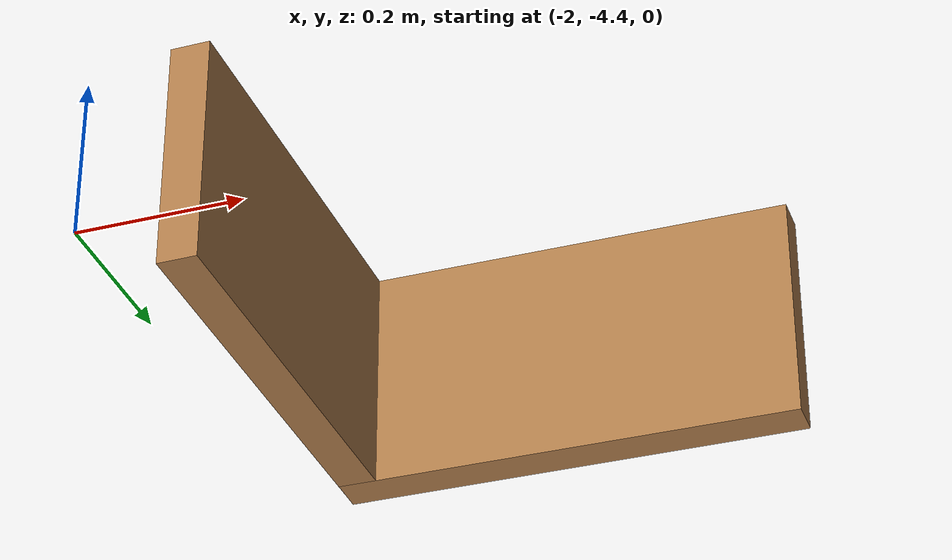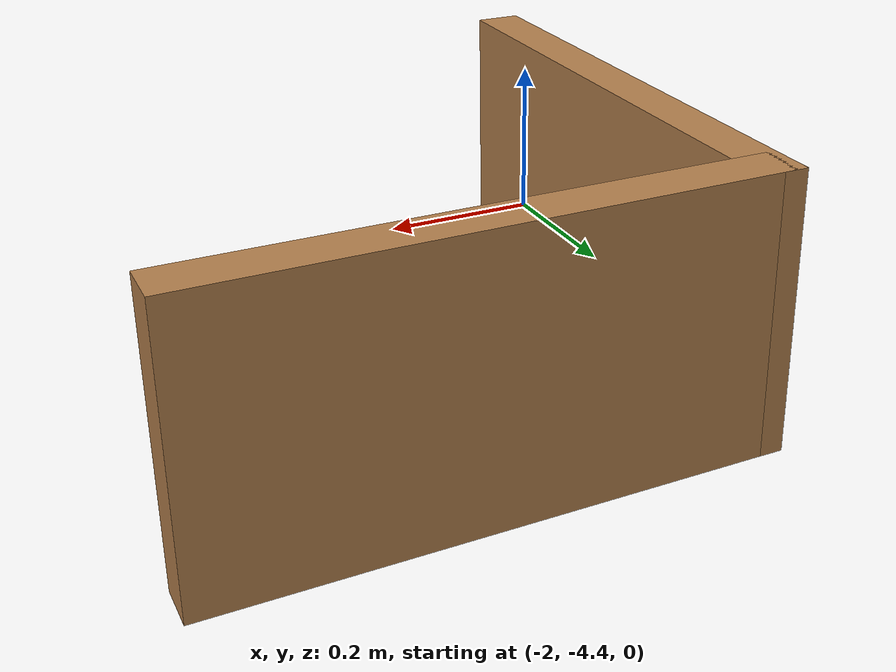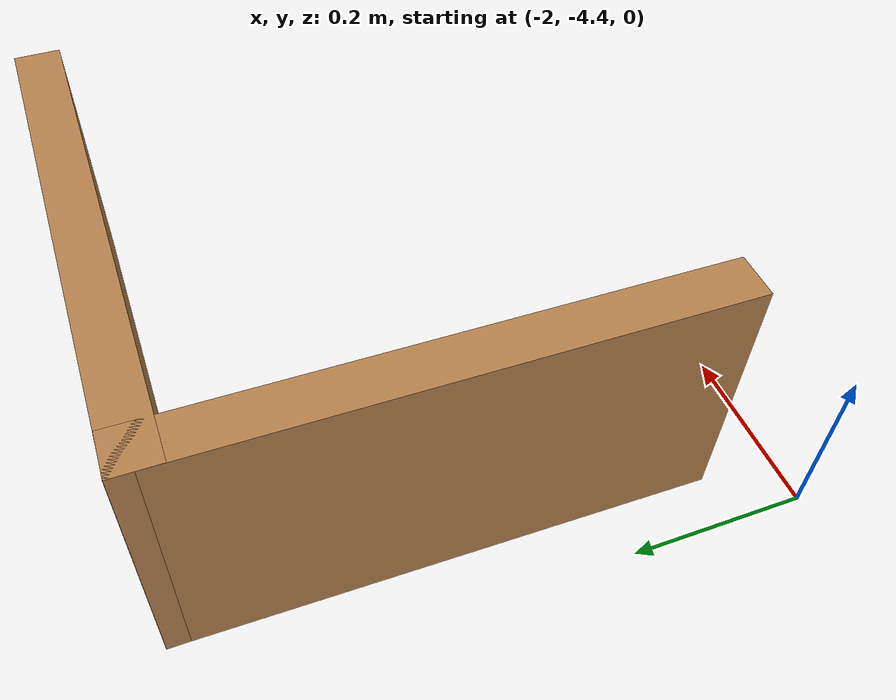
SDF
<?xml version='1.0'?>
<sdf version='1.7'>
  <model name='corner60'>
    <pose>-0.971093 -2.15761 0 0 -0 0</pose>
    <link name='Wall_29'>
      <collision name='Wall_29_Collision'>
        <geometry>
          <box>
            <size>0.6 0.05 0.3</size>
          </box>
        </geometry>
        <pose>0 0 0.15 0 -0 0</pose>
      </collision>
      <visual name='Wall_29_Visual'>
        <pose>0 0 0.15 0 -0 0</pose>
        <geometry>
          <box>
            <size>0.6 0.05 0.3</size>
          </box>
        </geometry>
        <material>
          <script>
            <uri>file://media/materials/scripts/gazebo.material</uri>
            <name>Gazebo/Wood</name>
          </script>
          <ambient>1 1 1 1</ambient>
        </material>
        <meta>
          <layer>0</layer>
        </meta>
      </visual>
      <pose>-0.665212 -1.58239 0 0 -0 0</pose>
    </link>
    <link name='Wall_34'>
      <collision name='Wall_34_Collision'>
        <geometry>
          <box>
            <size>0.6 0.05 0.3</size>
          </box>
        </geometry>
        <pose>0 0 0.15 0 -0 0</pose>
      </collision>
      <visual name='Wall_34_Visual'>
        <pose>0 0 0.15 0 -0 0</pose>
        <geometry>
          <box>
            <size>0.6 0.05 0.3</size>
          </box>
        </geometry>
        <material>
          <script>
            <uri>file://media/materials/scripts/gazebo.material</uri>
            <name>Gazebo/Wood</name>
          </script>
          <ambient>1 1 1 1</ambient>
        </material>
        <meta>
          <layer>0</layer>
        </meta>
      </visual>
      <pose>-0.943025 -1.85737 0 0 -0 -1.58103</pose>
    </link>
    <static>1</static>
  </model>
</sdf>
